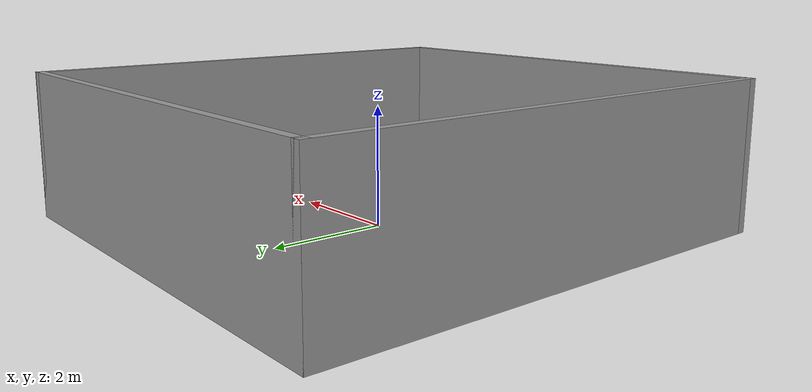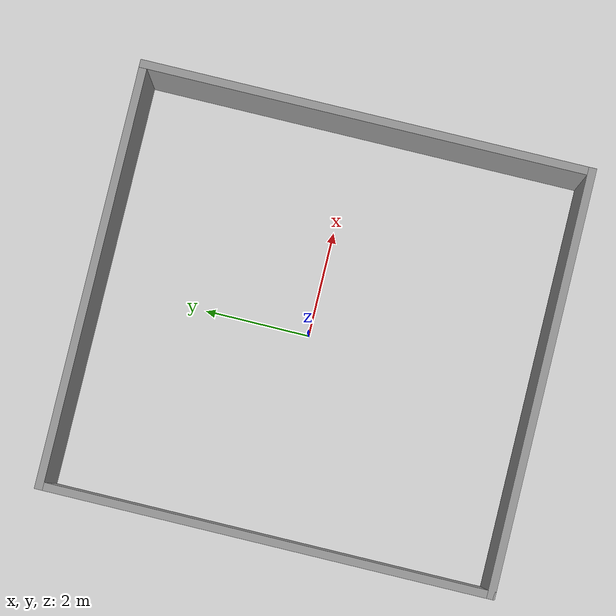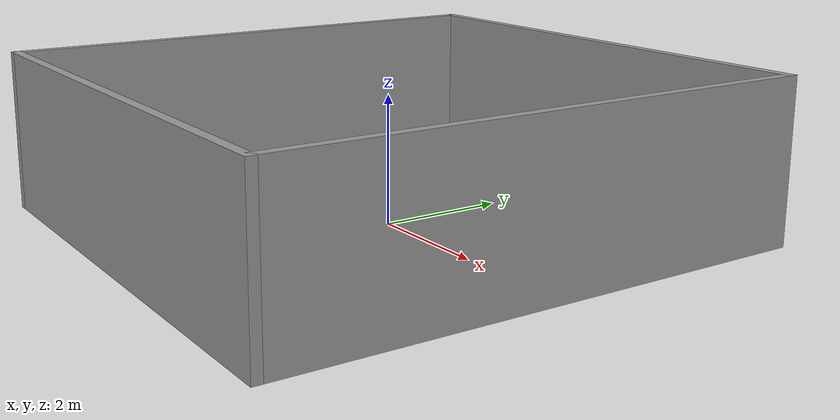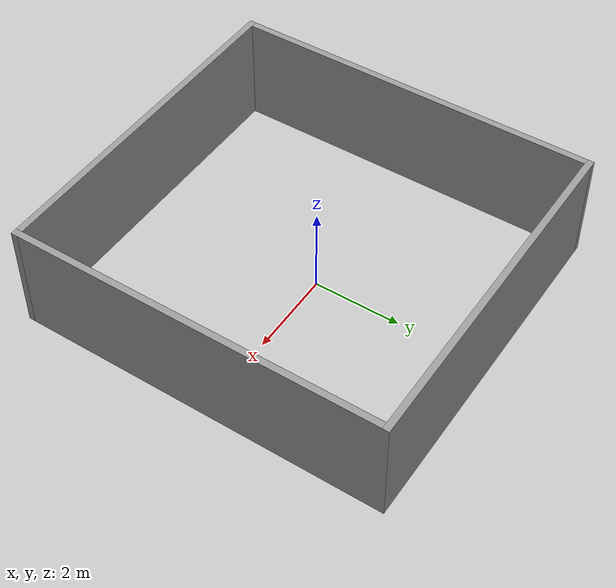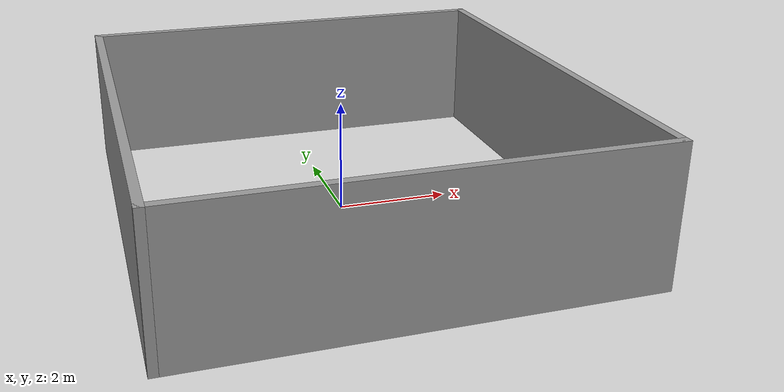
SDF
<?xml version='1.0'?>
<sdf version='1.6'>
  <model name='wall'>
    <pose frame=''>0.031717 -0.142732 0 0 -0 0</pose>
    <link name='Wall_16'>
      <collision name='Wall_16_Collision'>
        <geometry>
          <box>
            <size>8 0.15 2.5</size>
          </box>
        </geometry>
        <pose frame=''>0 0 1.25 0 -0 0</pose>
      </collision>
      <visual name='Wall_16_Visual'>
        <pose frame=''>0 0 1.25 0 -0 0</pose>
        <geometry>
          <box>
            <size>8 0.15 2.5</size>
          </box>
        </geometry>
        <material>
          <script>
            <uri>file://media/materials/scripts/gazebo.material</uri>
            <name>Gazebo/Grey</name>
          </script>
          <ambient>1 1 1 1</ambient>
        </material>
        <meta>
          <layer>0</layer>
        </meta>
      </visual>
      <pose frame=''>0 4.175 0 0 -0 0</pose>
    </link>
    <link name='Wall_17'>
      <collision name='Wall_17_Collision'>
        <geometry>
          <box>
            <size>8.5 0.15 2.5</size>
          </box>
        </geometry>
        <pose frame=''>0 0 1.25 0 -0 0</pose>
      </collision>
      <visual name='Wall_17_Visual'>
        <pose frame=''>0 0 1.25 0 -0 0</pose>
        <geometry>
          <box>
            <size>8.5 0.15 2.5</size>
          </box>
        </geometry>
        <material>
          <script>
            <uri>file://media/materials/scripts/gazebo.material</uri>
            <name>Gazebo/Grey</name>
          </script>
          <ambient>1 1 1 1</ambient>
        </material>
        <meta>
          <layer>0</layer>
        </meta>
      </visual>
      <pose frame=''>3.925 -0 0 0 -0 -1.5708</pose>
    </link>
    <link name='Wall_18'>
      <collision name='Wall_18_Collision'>
        <geometry>
          <box>
            <size>8 0.15 2.5</size>
          </box>
        </geometry>
        <pose frame=''>0 0 1.25 0 -0 0</pose>
      </collision>
      <visual name='Wall_18_Visual'>
        <pose frame=''>0 0 1.25 0 -0 0</pose>
        <geometry>
          <box>
            <size>8 0.15 2.5</size>
          </box>
        </geometry>
        <material>
          <script>
            <uri>file://media/materials/scripts/gazebo.material</uri>
            <name>Gazebo/Grey</name>
          </script>
          <ambient>1 1 1 1</ambient>
        </material>
        <meta>
          <layer>0</layer>
        </meta>
      </visual>
      <pose frame=''>0 -4.175 0 0 -0 3.14159</pose>
    </link>
    <link name='Wall_9'>
      <collision name='Wall_9_Collision'>
        <geometry>
          <box>
            <size>8.5 0.15 2.5</size>
          </box>
        </geometry>
        <pose frame=''>0 0 1.25 0 -0 0</pose>
      </collision>
      <visual name='Wall_9_Visual'>
        <pose frame=''>0 0 1.25 0 -0 0</pose>
        <geometry>
          <box>
            <size>8.5 0.15 2.5</size>
          </box>
        </geometry>
        <material>
          <script>
            <uri>file://media/materials/scripts/gazebo.material</uri>
            <name>Gazebo/Grey</name>
          </script>
          <ambient>1 1 1 1</ambient>
        </material>
        <meta>
          <layer>0</layer>
        </meta>
      </visual>
      <pose frame=''>-3.925 -0 0 0 -0 1.5708</pose>
    </link>
    <static>1</static>
  </model>
</sdf>
